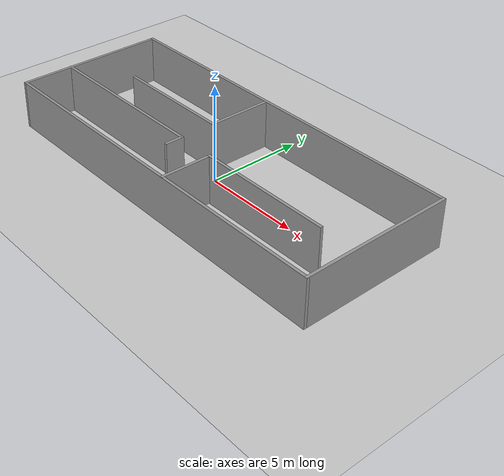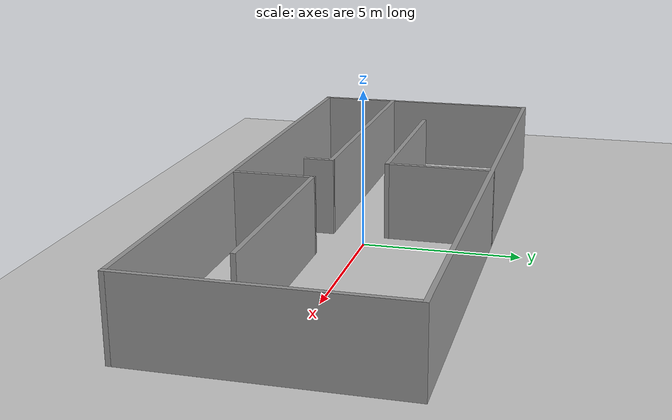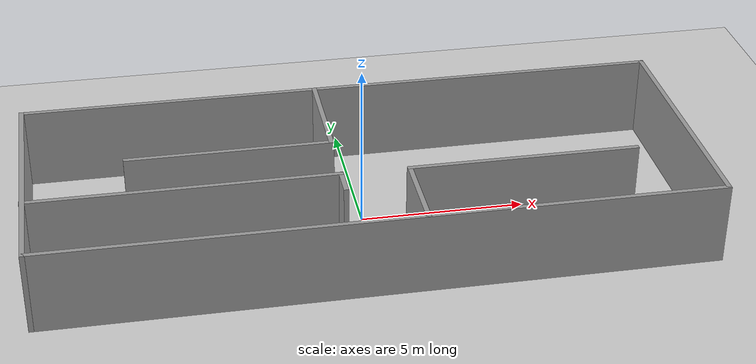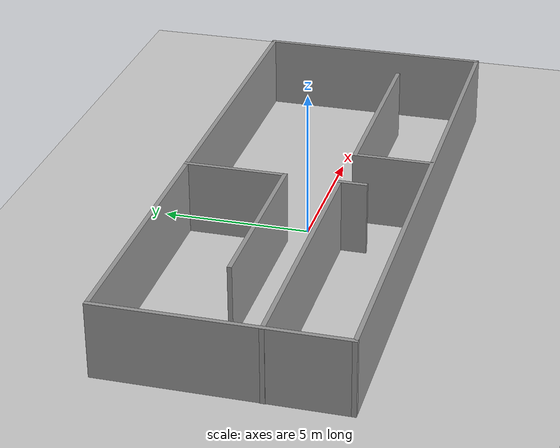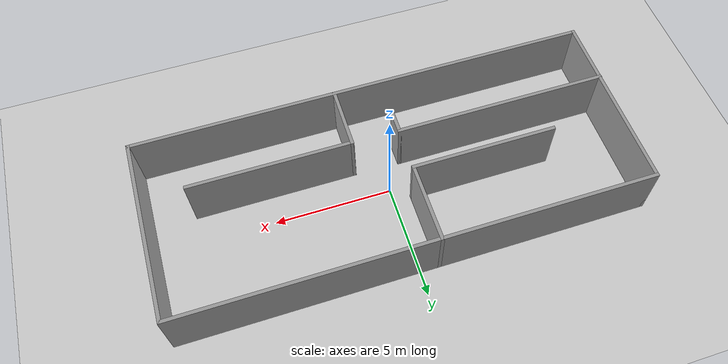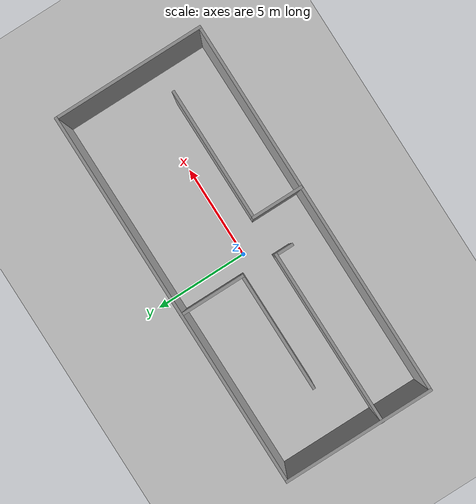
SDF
<sdf version='1.7'>
  <world name='default'>
    <light name='sun' type='directional'>
      <cast_shadows>1</cast_shadows>
      <pose>0 0 10 0 -0 0</pose>
      <diffuse>0.8 0.8 0.8 1</diffuse>
      <specular>0.2 0.2 0.2 1</specular>
      <attenuation>
        <range>1000</range>
        <constant>0.9</constant>
        <linear>0.01</linear>
        <quadratic>0.001</quadratic>
      </attenuation>
      <direction>-0.5 0.1 -0.9</direction>
    </light>

    <model name='ground_plane'>
      <static>1</static>
      <link name='link'>
        <collision name='collision'>
          <geometry>
            <plane>
              <normal>0 0 1</normal>
              <size>100 100</size>
            </plane>
          </geometry>
          <surface>
            <friction>
              <ode><mu>100</mu><mu2>50</mu2></ode>
            </friction>
          </surface>
        </collision>
        <visual name='visual'>
          <geometry>
            <plane>
              <normal>0 0 1</normal>
              <size>100 100</size>
            </plane>
          </geometry>
          <material>
            <script>
              <uri>file://media/materials/scripts/gazebo.material</uri>
              <name>Gazebo/Grey</name>
            </script>
          </material>
        </visual>
      </link>
    </model>

    <gravity>0 0 -9.8</gravity>
    <physics type='ode'>
      <max_step_size>0.001</max_step_size>
      <real_time_factor>1</real_time_factor>
      <real_time_update_rate>1000</real_time_update_rate>
    </physics>

    <model name='bigger_room'>
      <pose>0 0 0 0 -0 0</pose>
      <static>1</static>
      <link name='Wall_0'>
        <collision name='Wall_0_Collision'><geometry><box><size>8 0.15 2.5</size></box></geometry><pose>0 0 1.25 0 -0 0</pose></collision>
        <visual name='Wall_0_Visual'><pose>0 0 1.25 0 -0 0</pose><geometry><box><size>8 0.15 2.5</size></box></geometry><material><script><uri>file://media/materials/scripts/gazebo.material</uri><name>Gazebo/Grey</name></script></material></visual>
        <pose>-9.91757 -0.000951 0 0 -0 1.5708</pose>
      </link>
      <link name='Wall_1'>
        <collision name='Wall_1_Collision'><geometry><box><size>20 0.15 2.5</size></box></geometry><pose>0 0 1.25 0 -0 0</pose></collision>
        <visual name='Wall_1_Visual'><pose>0 0 1.25 0 -0 0</pose><geometry><box><size>20 0.15 2.5</size></box></geometry><material><script><uri>file://media/materials/scripts/gazebo.material</uri><name>Gazebo/Grey</name></script></material></visual>
        <pose>0.007425 3.92405 0 0 -0 0</pose>
      </link>
      <link name='Wall_11'>
        <collision name='Wall_11_Collision'><geometry><box><size>2.75 0.15 2.5</size></box></geometry><pose>0 0 1.25 0 -0 0</pose></collision>
        <visual name='Wall_11_Visual'><pose>0 0 1.25 0 -0 0</pose><geometry><box><size>2.75 0.15 2.5</size></box></geometry><material><script><uri>file://media/materials/scripts/gazebo.material</uri><name>Gazebo/Grey</name></script></material></visual>
        <pose>1.19125 -2.6096 0 0 -0 1.5708</pose>
      </link>
      <link name='Wall_12'>
        <collision name='Wall_12_Collision'><geometry><box><size>7 0.15 2.5</size></box></geometry><pose>0 0 1.25 0 -0 0</pose></collision>
        <visual name='Wall_12_Visual'><pose>0 0 1.25 0 -0 0</pose><geometry><box><size>7 0.15 2.5</size></box></geometry><material><script><uri>file://media/materials/scripts/gazebo.material</uri><name>Gazebo/Grey</name></script></material></visual>
        <pose>4.61625 -1.3096 0 0 -0 0</pose>
      </link>
      <link name='Wall_2'>
        <collision name='Wall_2_Collision'><geometry><box><size>8 0.15 2.5</size></box></geometry><pose>0 0 1.25 0 -0 0</pose></collision>
        <visual name='Wall_2_Visual'><pose>0 0 1.25 0 -0 0</pose><geometry><box><size>8 0.15 2.5</size></box></geometry><material><script><uri>file://media/materials/scripts/gazebo.material</uri><name>Gazebo/Grey</name></script></material></visual>
        <pose>9.93243 -0.000951 0 0 -0 -1.5708</pose>
      </link>
      <link name='Wall_3'>
        <collision name='Wall_3_Collision'><geometry><box><size>20 0.15 2.5</size></box></geometry><pose>0 0 1.25 0 -0 0</pose></collision>
        <visual name='Wall_3_Visual'><pose>0 0 1.25 0 -0 0</pose><geometry><box><size>20 0.15 2.5</size></box></geometry><material><script><uri>file://media/materials/scripts/gazebo.material</uri><name>Gazebo/Grey</name></script></material></visual>
        <pose>0.007425 -3.92595 0 0 -0 3.14159</pose>
      </link>
      <link name='Wall_5'>
        <collision name='Wall_5_Collision'><geometry><box><size>3.5 0.15 2.5</size></box></geometry><pose>0 0 1.25 0 -0 0</pose></collision>
        <visual name='Wall_5_Visual'><pose>0 0 1.25 0 -0 0</pose><geometry><box><size>3.5 0.15 2.5</size></box></geometry><material><script><uri>file://media/materials/scripts/gazebo.material</uri><name>Gazebo/Grey</name></script></material></visual>
        <pose>-0.820103 2.25095 0 0 -0 -1.5708</pose>
      </link>
      <link name='Wall_6'>
        <collision name='Wall_6_Collision'><geometry><box><size>6.25 0.15 2.5</size></box></geometry><pose>0 0 1.25 0 -0 0</pose></collision>
        <visual name='Wall_6_Visual'><pose>0 0 1.25 0 -0 0</pose><geometry><box><size>6.25 0.15 2.5</size></box></geometry><material><script><uri>file://media/materials/scripts/gazebo.material</uri><name>Gazebo/Grey</name></script></material></visual>
        <pose>-3.8701 0.575952 0 0 -0 3.14159</pose>
      </link>
      <link name='Wall_8'>
        <collision name='Wall_8_Collision'><geometry><box><size>9.25 0.15 2.5</size></box></geometry><pose>0 0 1.25 0 -0 0</pose></collision>
        <visual name='Wall_8_Visual'><pose>0 0 1.25 0 -0 0</pose><geometry><box><size>9.25 0.15 2.5</size></box></geometry><material><script><uri>file://media/materials/scripts/gazebo.material</uri><name>Gazebo/Grey</name></script></material></visual>
        <pose>-5.38243 -1.2686 0 0 -0 0</pose>
      </link>
      <link name='Wall_9'>
        <collision name='Wall_9_Collision'><geometry><box><size>1 0.15 2.5</size></box></geometry><pose>0 0 1.25 0 -0 0</pose></collision>
        <visual name='Wall_9_Visual'><pose>0 0 1.25 0 -0 0</pose><geometry><box><size>1 0.15 2.5</size></box></geometry><material><script><uri>file://media/materials/scripts/gazebo.material</uri><name>Gazebo/Grey</name></script></material></visual>
        <pose>-0.832426 -1.6936 0 0 -0 -1.5708</pose>
      </link>
    </model>

    <gui fullscreen='0'>
      <camera name='user_camera'>
        <pose>0 -15 20 0 1.0 1.57</pose>
      </camera>
    </gui>
  </world>
</sdf>
